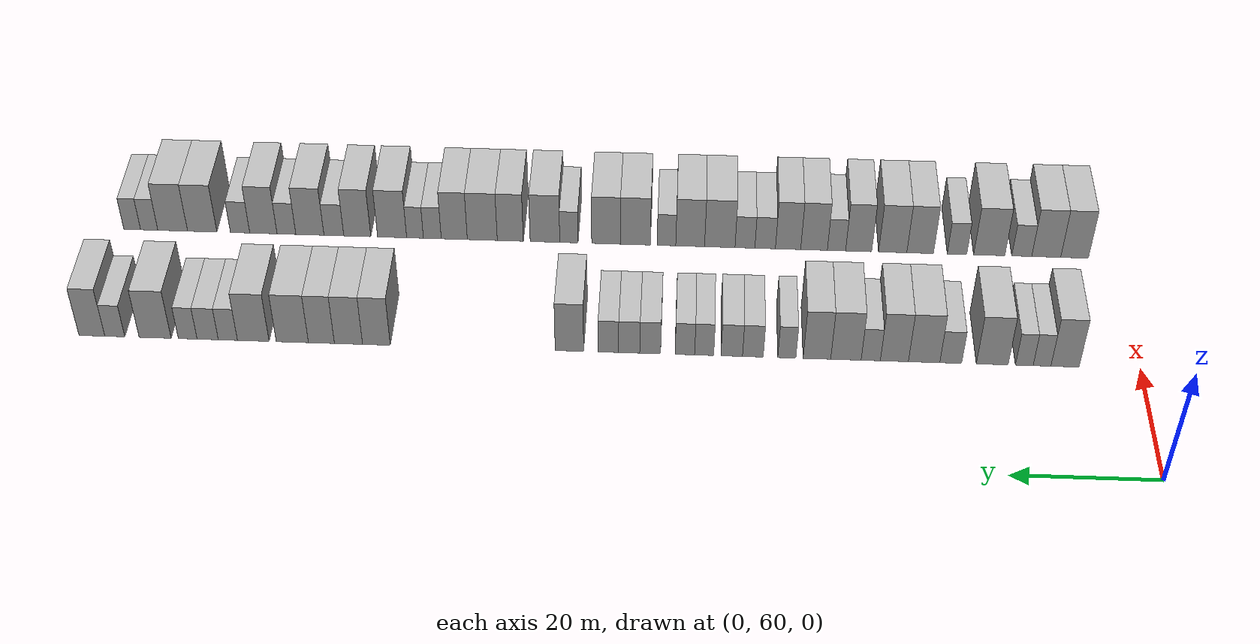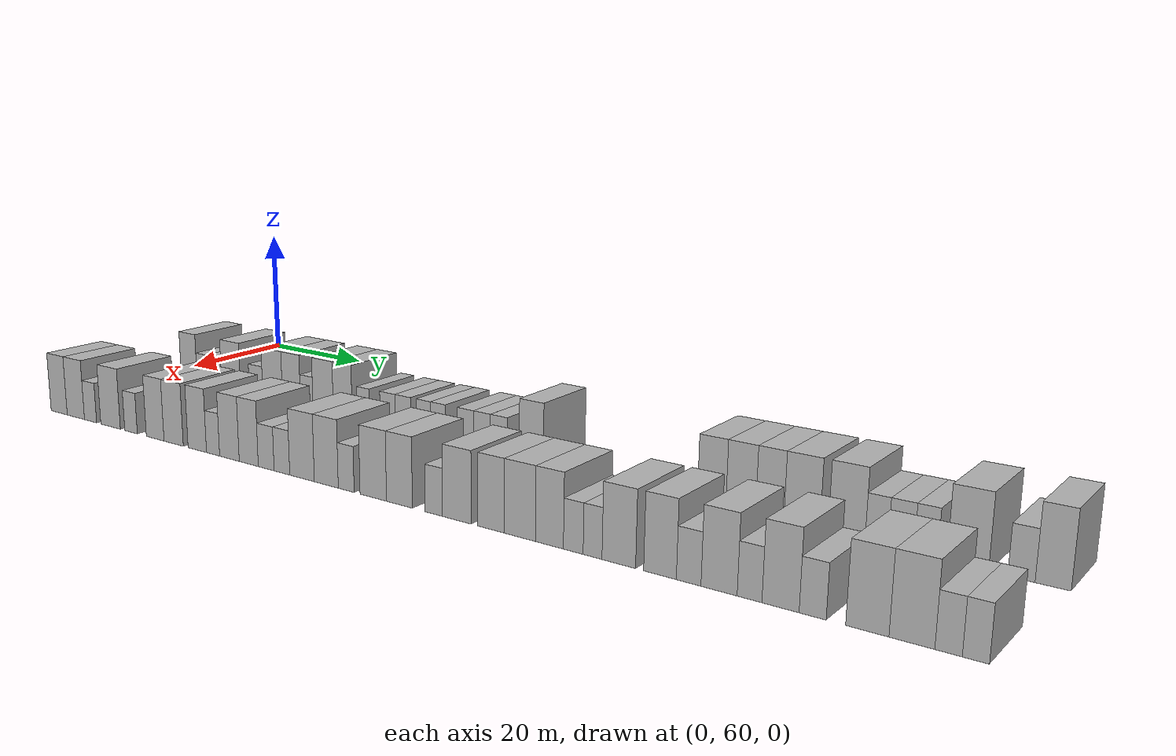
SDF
<sdf version="1.6">
 <world name="default">
  <model name="building_64">
   <static>1</static>
   <pose>25.0000 70.3157 0 0.000000 0.000000 0.000000</pose>
   <link name="link">
    <pose>0 0 4.50 0 0 0</pose>
    <collision name="collision"><geometry><box><size>10.0000 3.8328 9.0000</size></box></geometry></collision>
    <visual name="visual">
     <cast_shadows>0</cast_shadows>
     <geometry><box><size>10.0000 3.8328 9.0000</size></box></geometry>
     <material>
      <script>
       <uri>model://HANNAS_wall/materials/scripts</uri>
       <uri>model://HANNAS_wall/materials/textures</uri>
       <name>vrc/HANNAS_wall</name>
      </script>
     </material>
    </visual>
   </link>
  </model>
  <model name="building_65">
   <static>1</static>
   <pose>25.0000 73.4399 0 0.000000 0.000000 0.000000</pose>
   <link name="link">
    <pose>0 0 3.00 0 0 0</pose>
    <collision name="collision"><geometry><box><size>10.0000 2.4156 6.0000</size></box></geometry></collision>
    <visual name="visual">
     <cast_shadows>0</cast_shadows>
     <geometry><box><size>10.0000 2.4156 6.0000</size></box></geometry>
     <material>
      <script>
       <uri>model://HANNAS_wall/materials/scripts</uri>
       <uri>model://HANNAS_wall/materials/textures</uri>
       <name>vrc/HANNAS_wall</name>
      </script>
     </material>
    </visual>
   </link>
  </model>
  <model name="building_66">
   <static>1</static>
   <pose>25.0000 75.8507 0 0.000000 0.000000 0.000000</pose>
   <link name="link">
    <pose>0 0 3.00 0 0 0</pose>
    <collision name="collision"><geometry><box><size>10.0000 2.4062 6.0000</size></box></geometry></collision>
    <visual name="visual">
     <cast_shadows>0</cast_shadows>
     <geometry><box><size>10.0000 2.4062 6.0000</size></box></geometry>
     <material>
      <script>
       <uri>model://HANNAS_wall/materials/scripts</uri>
       <uri>model://HANNAS_wall/materials/textures</uri>
       <name>vrc/HANNAS_wall</name>
      </script>
     </material>
    </visual>
   </link>
  </model>
  <model name="building_67">
   <static>1</static>
   <pose>25.0000 80.2220 0 0.000000 0.000000 0.000000</pose>
   <link name="link">
    <pose>0 0 4.50 0 0 0</pose>
    <collision name="collision"><geometry><box><size>10.0000 4.3364 9.0000</size></box></geometry></collision>
    <visual name="visual">
     <cast_shadows>0</cast_shadows>
     <geometry><box><size>10.0000 4.3364 9.0000</size></box></geometry>
     <material>
      <script>
       <uri>model://HANNAS_wall/materials/scripts</uri>
       <uri>model://HANNAS_wall/materials/textures</uri>
       <name>vrc/HANNAS_wall</name>
      </script>
     </material>
    </visual>
   </link>
  </model>
  <model name="building_68">
   <static>1</static>
   <pose>25.0000 85.8815 0 0.000000 0.000000 0.000000</pose>
   <link name="link">
    <pose>0 0 3.00 0 0 0</pose>
    <collision name="collision"><geometry><box><size>10.0000 2.9826 6.0000</size></box></geometry></collision>
    <visual name="visual">
     <cast_shadows>0</cast_shadows>
     <geometry><box><size>10.0000 2.9826 6.0000</size></box></geometry>
     <material>
      <script>
       <uri>model://HANNAS_wall/materials/scripts</uri>
       <uri>model://HANNAS_wall/materials/textures</uri>
       <name>vrc/HANNAS_wall</name>
      </script>
     </material>
    </visual>
   </link>
  </model>
  <model name="building_69">
   <static>1</static>
   <pose>25.0000 89.5196 0 0.000000 0.000000 0.000000</pose>
   <link name="link">
    <pose>0 0 4.50 0 0 0</pose>
    <collision name="collision"><geometry><box><size>10.0000 4.2936 9.0000</size></box></geometry></collision>
    <visual name="visual">
     <cast_shadows>0</cast_shadows>
     <geometry><box><size>10.0000 4.2936 9.0000</size></box></geometry>
     <material>
      <script>
       <uri>model://HANNAS_wall/materials/scripts</uri>
       <uri>model://HANNAS_wall/materials/textures</uri>
       <name>vrc/HANNAS_wall</name>
      </script>
     </material>
    </visual>
   </link>
  </model>
  <model name="building_70">
   <static>1</static>
   <pose>25.0000 93.5874 0 0.000000 0.000000 0.000000</pose>
   <link name="link">
    <pose>0 0 4.50 0 0 0</pose>
    <collision name="collision"><geometry><box><size>10.0000 3.8420 9.0000</size></box></geometry></collision>
    <visual name="visual">
     <cast_shadows>0</cast_shadows>
     <geometry><box><size>10.0000 3.8420 9.0000</size></box></geometry>
     <material>
      <script>
       <uri>model://HANNAS_wall/materials/scripts</uri>
       <uri>model://HANNAS_wall/materials/textures</uri>
       <name>vrc/HANNAS_wall</name>
      </script>
     </material>
    </visual>
   </link>
  </model>
  <model name="building_71">
   <static>1</static>
   <pose>25.0000 96.8201 0 0.000000 0.000000 0.000000</pose>
   <link name="link">
    <pose>0 0 3.00 0 0 0</pose>
    <collision name="collision"><geometry><box><size>10.0000 2.6233 6.0000</size></box></geometry></collision>
    <visual name="visual">
     <cast_shadows>0</cast_shadows>
     <geometry><box><size>10.0000 2.6233 6.0000</size></box></geometry>
     <material>
      <script>
       <uri>model://HANNAS_wall/materials/scripts</uri>
       <uri>model://HANNAS_wall/materials/textures</uri>
       <name>vrc/HANNAS_wall</name>
      </script>
     </material>
    </visual>
   </link>
  </model>
  <model name="building_72">
   <static>1</static>
   <pose>25.0000 100.2155 0 0.000000 0.000000 0.000000</pose>
   <link name="link">
    <pose>0 0 4.50 0 0 0</pose>
    <collision name="collision"><geometry><box><size>10.0000 4.1676 9.0000</size></box></geometry></collision>
    <visual name="visual">
     <cast_shadows>0</cast_shadows>
     <geometry><box><size>10.0000 4.1676 9.0000</size></box></geometry>
     <material>
      <script>
       <uri>model://HANNAS_wall/materials/scripts</uri>
       <uri>model://HANNAS_wall/materials/textures</uri>
       <name>vrc/HANNAS_wall</name>
      </script>
     </material>
    </visual>
   </link>
  </model>
  <model name="building_73">
   <static>1</static>
   <pose>25.0000 104.1892 0 0.000000 0.000000 0.000000</pose>
   <link name="link">
    <pose>0 0 4.50 0 0 0</pose>
    <collision name="collision"><geometry><box><size>10.0000 3.7799 9.0000</size></box></geometry></collision>
    <visual name="visual">
     <cast_shadows>0</cast_shadows>
     <geometry><box><size>10.0000 3.7799 9.0000</size></box></geometry>
     <material>
      <script>
       <uri>model://HANNAS_wall/materials/scripts</uri>
       <uri>model://HANNAS_wall/materials/textures</uri>
       <name>vrc/HANNAS_wall</name>
      </script>
     </material>
    </visual>
   </link>
  </model>
  <model name="building_74">
   <static>1</static>
   <pose>25.0000 108.3183 0 0.000000 0.000000 0.000000</pose>
   <link name="link">
    <pose>0 0 3.00 0 0 0</pose>
    <collision name="collision"><geometry><box><size>10.0000 2.4783 6.0000</size></box></geometry></collision>
    <visual name="visual">
     <cast_shadows>0</cast_shadows>
     <geometry><box><size>10.0000 2.4783 6.0000</size></box></geometry>
     <material>
      <script>
       <uri>model://HANNAS_wall/materials/scripts</uri>
       <uri>model://HANNAS_wall/materials/textures</uri>
       <name>vrc/HANNAS_wall</name>
      </script>
     </material>
    </visual>
   </link>
  </model>
  <model name="building_75">
   <static>1</static>
   <pose>25.0000 112.9809 0 0.000000 0.000000 0.000000</pose>
   <link name="link">
    <pose>0 0 3.00 0 0 0</pose>
    <collision name="collision"><geometry><box><size>10.0000 2.8468 6.0000</size></box></geometry></collision>
    <visual name="visual">
     <cast_shadows>0</cast_shadows>
     <geometry><box><size>10.0000 2.8468 6.0000</size></box></geometry>
     <material>
      <script>
       <uri>model://HANNAS_wall/materials/scripts</uri>
       <uri>model://HANNAS_wall/materials/textures</uri>
       <name>vrc/HANNAS_wall</name>
      </script>
     </material>
    </visual>
   </link>
  </model>
  <model name="building_76">
   <static>1</static>
   <pose>25.0000 115.8867 0 0.000000 0.000000 0.000000</pose>
   <link name="link">
    <pose>0 0 3.00 0 0 0</pose>
    <collision name="collision"><geometry><box><size>10.0000 2.9647 6.0000</size></box></geometry></collision>
    <visual name="visual">
     <cast_shadows>0</cast_shadows>
     <geometry><box><size>10.0000 2.9647 6.0000</size></box></geometry>
     <material>
      <script>
       <uri>model://HANNAS_wall/materials/scripts</uri>
       <uri>model://HANNAS_wall/materials/textures</uri>
       <name>vrc/HANNAS_wall</name>
      </script>
     </material>
    </visual>
   </link>
  </model>
  <model name="building_77">
   <static>1</static>
   <pose>25.0000 119.6824 0 0.000000 0.000000 0.000000</pose>
   <link name="link">
    <pose>0 0 3.00 0 0 0</pose>
    <collision name="collision"><geometry><box><size>10.0000 2.6267 6.0000</size></box></geometry></collision>
    <visual name="visual">
     <cast_shadows>0</cast_shadows>
     <geometry><box><size>10.0000 2.6267 6.0000</size></box></geometry>
     <material>
      <script>
       <uri>model://HANNAS_wall/materials/scripts</uri>
       <uri>model://HANNAS_wall/materials/textures</uri>
       <name>vrc/HANNAS_wall</name>
      </script>
     </material>
    </visual>
   </link>
  </model>
  <model name="building_78">
   <static>1</static>
   <pose>25.0000 122.3355 0 0.000000 0.000000 0.000000</pose>
   <link name="link">
    <pose>0 0 3.00 0 0 0</pose>
    <collision name="collision"><geometry><box><size>10.0000 2.6797 6.0000</size></box></geometry></collision>
    <visual name="visual">
     <cast_shadows>0</cast_shadows>
     <geometry><box><size>10.0000 2.6797 6.0000</size></box></geometry>
     <material>
      <script>
       <uri>model://HANNAS_wall/materials/scripts</uri>
       <uri>model://HANNAS_wall/materials/textures</uri>
       <name>vrc/HANNAS_wall</name>
      </script>
     </material>
    </visual>
   </link>
  </model>
  <model name="building_79">
   <static>1</static>
   <pose>25.0000 127.1110 0 0.000000 0.000000 0.000000</pose>
   <link name="link">
    <pose>0 0 3.00 0 0 0</pose>
    <collision name="collision"><geometry><box><size>10.0000 2.8712 6.0000</size></box></geometry></collision>
    <visual name="visual">
     <cast_shadows>0</cast_shadows>
     <geometry><box><size>10.0000 2.8712 6.0000</size></box></geometry>
     <material>
      <script>
       <uri>model://HANNAS_wall/materials/scripts</uri>
       <uri>model://HANNAS_wall/materials/textures</uri>
       <name>vrc/HANNAS_wall</name>
      </script>
     </material>
    </visual>
   </link>
  </model>
  <model name="building_80">
   <static>1</static>
   <pose>25.0000 130.0078 0 0.000000 0.000000 0.000000</pose>
   <link name="link">
    <pose>0 0 3.00 0 0 0</pose>
    <collision name="collision"><geometry><box><size>10.0000 2.9224 6.0000</size></box></geometry></collision>
    <visual name="visual">
     <cast_shadows>0</cast_shadows>
     <geometry><box><size>10.0000 2.9224 6.0000</size></box></geometry>
     <material>
      <script>
       <uri>model://HANNAS_wall/materials/scripts</uri>
       <uri>model://HANNAS_wall/materials/textures</uri>
       <name>vrc/HANNAS_wall</name>
      </script>
     </material>
    </visual>
   </link>
  </model>
  <model name="building_81">
   <static>1</static>
   <pose>25.0000 132.8782 0 0.000000 0.000000 0.000000</pose>
   <link name="link">
    <pose>0 0 3.00 0 0 0</pose>
    <collision name="collision"><geometry><box><size>10.0000 2.8182 6.0000</size></box></geometry></collision>
    <visual name="visual">
     <cast_shadows>0</cast_shadows>
     <geometry><box><size>10.0000 2.8182 6.0000</size></box></geometry>
     <material>
      <script>
       <uri>model://HANNAS_wall/materials/scripts</uri>
       <uri>model://HANNAS_wall/materials/textures</uri>
       <name>vrc/HANNAS_wall</name>
      </script>
     </material>
    </visual>
   </link>
  </model>
  <model name="building_82">
   <static>1</static>
   <pose>25.0000 138.2498 0 0.000000 0.000000 0.000000</pose>
   <link name="link">
    <pose>0 0 4.50 0 0 0</pose>
    <collision name="collision"><geometry><box><size>10.0000 3.9250 9.0000</size></box></geometry></collision>
    <visual name="visual">
     <cast_shadows>0</cast_shadows>
     <geometry><box><size>10.0000 3.9250 9.0000</size></box></geometry>
     <material>
      <script>
       <uri>model://HANNAS_wall/materials/scripts</uri>
       <uri>model://HANNAS_wall/materials/textures</uri>
       <name>vrc/HANNAS_wall</name>
      </script>
     </material>
    </visual>
   </link>
  </model>
  <model name="building_83">
   <static>1</static>
   <pose>25.0000 164.9916 0 0.000000 0.000000 0.000000</pose>
   <link name="link">
    <pose>0 0 4.50 0 0 0</pose>
    <collision name="collision"><geometry><box><size>10.0000 3.8529 9.0000</size></box></geometry></collision>
    <visual name="visual">
     <cast_shadows>0</cast_shadows>
     <geometry><box><size>10.0000 3.8529 9.0000</size></box></geometry>
     <material>
      <script>
       <uri>model://HANNAS_wall/materials/scripts</uri>
       <uri>model://HANNAS_wall/materials/textures</uri>
       <name>vrc/HANNAS_wall</name>
      </script>
     </material>
    </visual>
   </link>
  </model>
  <model name="building_84">
   <static>1</static>
   <pose>25.0000 168.8767 0 0.000000 0.000000 0.000000</pose>
   <link name="link">
    <pose>0 0 4.50 0 0 0</pose>
    <collision name="collision"><geometry><box><size>10.0000 3.9171 9.0000</size></box></geometry></collision>
    <visual name="visual">
     <cast_shadows>0</cast_shadows>
     <geometry><box><size>10.0000 3.9171 9.0000</size></box></geometry>
     <material>
      <script>
       <uri>model://HANNAS_wall/materials/scripts</uri>
       <uri>model://HANNAS_wall/materials/textures</uri>
       <name>vrc/HANNAS_wall</name>
      </script>
     </material>
    </visual>
   </link>
  </model>
  <model name="building_85">
   <static>1</static>
   <pose>25.0000 172.6451 0 0.000000 0.000000 0.000000</pose>
   <link name="link">
    <pose>0 0 4.50 0 0 0</pose>
    <collision name="collision"><geometry><box><size>10.0000 3.6197 9.0000</size></box></geometry></collision>
    <visual name="visual">
     <cast_shadows>0</cast_shadows>
     <geometry><box><size>10.0000 3.6197 9.0000</size></box></geometry>
     <material>
      <script>
       <uri>model://HANNAS_wall/materials/scripts</uri>
       <uri>model://HANNAS_wall/materials/textures</uri>
       <name>vrc/HANNAS_wall</name>
      </script>
     </material>
    </visual>
   </link>
  </model>
  <model name="building_86">
   <static>1</static>
   <pose>25.0000 176.6981 0 0.000000 0.000000 0.000000</pose>
   <link name="link">
    <pose>0 0 4.50 0 0 0</pose>
    <collision name="collision"><geometry><box><size>10.0000 4.4865 9.0000</size></box></geometry></collision>
    <visual name="visual">
     <cast_shadows>0</cast_shadows>
     <geometry><box><size>10.0000 4.4865 9.0000</size></box></geometry>
     <material>
      <script>
       <uri>model://HANNAS_wall/materials/scripts</uri>
       <uri>model://HANNAS_wall/materials/textures</uri>
       <name>vrc/HANNAS_wall</name>
      </script>
     </material>
    </visual>
   </link>
  </model>
  <model name="building_87">
   <static>1</static>
   <pose>25.0000 182.1515 0 0.000000 0.000000 0.000000</pose>
   <link name="link">
    <pose>0 0 4.50 0 0 0</pose>
    <collision name="collision"><geometry><box><size>10.0000 4.4203 9.0000</size></box></geometry></collision>
    <visual name="visual">
     <cast_shadows>0</cast_shadows>
     <geometry><box><size>10.0000 4.4203 9.0000</size></box></geometry>
     <material>
      <script>
       <uri>model://HANNAS_wall/materials/scripts</uri>
       <uri>model://HANNAS_wall/materials/textures</uri>
       <name>vrc/HANNAS_wall</name>
      </script>
     </material>
    </visual>
   </link>
  </model>
  <model name="building_88">
   <static>1</static>
   <pose>25.0000 185.6992 0 0.000000 0.000000 0.000000</pose>
   <link name="link">
    <pose>0 0 3.00 0 0 0</pose>
    <collision name="collision"><geometry><box><size>10.0000 2.6751 6.0000</size></box></geometry></collision>
    <visual name="visual">
     <cast_shadows>0</cast_shadows>
     <geometry><box><size>10.0000 2.6751 6.0000</size></box></geometry>
     <material>
      <script>
       <uri>model://HANNAS_wall/materials/scripts</uri>
       <uri>model://HANNAS_wall/materials/textures</uri>
       <name>vrc/HANNAS_wall</name>
      </script>
     </material>
    </visual>
   </link>
  </model>
  <model name="building_89">
   <static>1</static>
   <pose>25.0000 188.5170 0 0.000000 0.000000 0.000000</pose>
   <link name="link">
    <pose>0 0 3.00 0 0 0</pose>
    <collision name="collision"><geometry><box><size>10.0000 2.9605 6.0000</size></box></geometry></collision>
    <visual name="visual">
     <cast_shadows>0</cast_shadows>
     <geometry><box><size>10.0000 2.9605 6.0000</size></box></geometry>
     <material>
      <script>
       <uri>model://HANNAS_wall/materials/scripts</uri>
       <uri>model://HANNAS_wall/materials/textures</uri>
       <name>vrc/HANNAS_wall</name>
      </script>
     </material>
    </visual>
   </link>
  </model>
  <model name="building_90">
   <static>1</static>
   <pose>25.0000 191.3114 0 0.000000 0.000000 0.000000</pose>
   <link name="link">
    <pose>0 0 3.00 0 0 0</pose>
    <collision name="collision"><geometry><box><size>10.0000 2.6284 6.0000</size></box></geometry></collision>
    <visual name="visual">
     <cast_shadows>0</cast_shadows>
     <geometry><box><size>10.0000 2.6284 6.0000</size></box></geometry>
     <material>
      <script>
       <uri>model://HANNAS_wall/materials/scripts</uri>
       <uri>model://HANNAS_wall/materials/textures</uri>
       <name>vrc/HANNAS_wall</name>
      </script>
     </material>
    </visual>
   </link>
  </model>
  <model name="building_91">
   <static>1</static>
   <pose>25.0000 195.8693 0 0.000000 0.000000 0.000000</pose>
   <link name="link">
    <pose>0 0 4.50 0 0 0</pose>
    <collision name="collision"><geometry><box><size>10.0000 4.4875 9.0000</size></box></geometry></collision>
    <visual name="visual">
     <cast_shadows>0</cast_shadows>
     <geometry><box><size>10.0000 4.4875 9.0000</size></box></geometry>
     <material>
      <script>
       <uri>model://HANNAS_wall/materials/scripts</uri>
       <uri>model://HANNAS_wall/materials/textures</uri>
       <name>vrc/HANNAS_wall</name>
      </script>
     </material>
    </visual>
   </link>
  </model>
  <model name="building_92">
   <static>1</static>
   <pose>25.0000 201.5171 0 0.000000 0.000000 0.000000</pose>
   <link name="link">
    <pose>0 0 3.00 0 0 0</pose>
    <collision name="collision"><geometry><box><size>10.0000 2.8082 6.0000</size></box></geometry></collision>
    <visual name="visual">
     <cast_shadows>0</cast_shadows>
     <geometry><box><size>10.0000 2.8082 6.0000</size></box></geometry>
     <material>
      <script>
       <uri>model://HANNAS_wall/materials/scripts</uri>
       <uri>model://HANNAS_wall/materials/textures</uri>
       <name>vrc/HANNAS_wall</name>
      </script>
     </material>
    </visual>
   </link>
  </model>
  <model name="building_93">
   <static>1</static>
   <pose>25.0000 204.7310 0 0.000000 0.000000 0.000000</pose>
   <link name="link">
    <pose>0 0 4.50 0 0 0</pose>
    <collision name="collision"><geometry><box><size>10.0000 3.6195 9.0000</size></box></geometry></collision>
    <visual name="visual">
     <cast_shadows>0</cast_shadows>
     <geometry><box><size>10.0000 3.6195 9.0000</size></box></geometry>
     <material>
      <script>
       <uri>model://HANNAS_wall/materials/scripts</uri>
       <uri>model://HANNAS_wall/materials/textures</uri>
       <name>vrc/HANNAS_wall</name>
      </script>
     </material>
    </visual>
   </link>
  </model>
  <model name="building_162">
   <static>1</static>
   <pose>47.0000 66.2551 0 0.000000 0.000000 0.000000</pose>
   <link name="link">
    <pose>0 0 4.50 0 0 0</pose>
    <collision name="collision"><geometry><box><size>10.0000 3.9796 9.0000</size></box></geometry></collision>
    <visual name="visual">
     <cast_shadows>0</cast_shadows>
     <geometry><box><size>10.0000 3.9796 9.0000</size></box></geometry>
     <material>
      <script>
       <uri>model://HANNAS_wall/materials/scripts</uri>
       <uri>model://HANNAS_wall/materials/textures</uri>
       <name>vrc/HANNAS_wall</name>
      </script>
     </material>
    </visual>
   </link>
  </model>
  <model name="building_163">
   <static>1</static>
   <pose>47.0000 70.3345 0 0.000000 0.000000 0.000000</pose>
   <link name="link">
    <pose>0 0 4.50 0 0 0</pose>
    <collision name="collision"><geometry><box><size>10.0000 4.1792 9.0000</size></box></geometry></collision>
    <visual name="visual">
     <cast_shadows>0</cast_shadows>
     <geometry><box><size>10.0000 4.1792 9.0000</size></box></geometry>
     <material>
      <script>
       <uri>model://HANNAS_wall/materials/scripts</uri>
       <uri>model://HANNAS_wall/materials/textures</uri>
       <name>vrc/HANNAS_wall</name>
      </script>
     </material>
    </visual>
   </link>
  </model>
  <model name="building_164">
   <static>1</static>
   <pose>47.0000 73.8592 0 0.000000 0.000000 0.000000</pose>
   <link name="link">
    <pose>0 0 3.00 0 0 0</pose>
    <collision name="collision"><geometry><box><size>10.0000 2.8702 6.0000</size></box></geometry></collision>
    <visual name="visual">
     <cast_shadows>0</cast_shadows>
     <geometry><box><size>10.0000 2.8702 6.0000</size></box></geometry>
     <material>
      <script>
       <uri>model://HANNAS_wall/materials/scripts</uri>
       <uri>model://HANNAS_wall/materials/textures</uri>
       <name>vrc/HANNAS_wall</name>
      </script>
     </material>
    </visual>
   </link>
  </model>
  <model name="building_165">
   <static>1</static>
   <pose>47.0000 78.5440 0 0.000000 0.000000 0.000000</pose>
   <link name="link">
    <pose>0 0 4.50 0 0 0</pose>
    <collision name="collision"><geometry><box><size>10.0000 4.4993 9.0000</size></box></geometry></collision>
    <visual name="visual">
     <cast_shadows>0</cast_shadows>
     <geometry><box><size>10.0000 4.4993 9.0000</size></box></geometry>
     <material>
      <script>
       <uri>model://HANNAS_wall/materials/scripts</uri>
       <uri>model://HANNAS_wall/materials/textures</uri>
       <name>vrc/HANNAS_wall</name>
      </script>
     </material>
    </visual>
   </link>
  </model>
  <model name="building_166">
   <static>1</static>
   <pose>47.0000 83.1988 0 0.000000 0.000000 0.000000</pose>
   <link name="link">
    <pose>0 0 3.00 0 0 0</pose>
    <collision name="collision"><geometry><box><size>10.0000 2.8103 6.0000</size></box></geometry></collision>
    <visual name="visual">
     <cast_shadows>0</cast_shadows>
     <geometry><box><size>10.0000 2.8103 6.0000</size></box></geometry>
     <material>
      <script>
       <uri>model://HANNAS_wall/materials/scripts</uri>
       <uri>model://HANNAS_wall/materials/textures</uri>
       <name>vrc/HANNAS_wall</name>
      </script>
     </material>
    </visual>
   </link>
  </model>
  <model name="building_167">
   <static>1</static>
   <pose>47.0000 88.5274 0 0.000000 0.000000 0.000000</pose>
   <link name="link">
    <pose>0 0 4.50 0 0 0</pose>
    <collision name="collision"><geometry><box><size>10.0000 3.8469 9.0000</size></box></geometry></collision>
    <visual name="visual">
     <cast_shadows>0</cast_shadows>
     <geometry><box><size>10.0000 3.8469 9.0000</size></box></geometry>
     <material>
      <script>
       <uri>model://HANNAS_wall/materials/scripts</uri>
       <uri>model://HANNAS_wall/materials/textures</uri>
       <name>vrc/HANNAS_wall</name>
      </script>
     </material>
    </visual>
   </link>
  </model>
  <model name="building_168">
   <static>1</static>
   <pose>47.0000 92.4946 0 0.000000 0.000000 0.000000</pose>
   <link name="link">
    <pose>0 0 4.50 0 0 0</pose>
    <collision name="collision"><geometry><box><size>10.0000 4.0874 9.0000</size></box></geometry></collision>
    <visual name="visual">
     <cast_shadows>0</cast_shadows>
     <geometry><box><size>10.0000 4.0874 9.0000</size></box></geometry>
     <material>
      <script>
       <uri>model://HANNAS_wall/materials/scripts</uri>
       <uri>model://HANNAS_wall/materials/textures</uri>
       <name>vrc/HANNAS_wall</name>
      </script>
     </material>
    </visual>
   </link>
  </model>
  <model name="building_169">
   <static>1</static>
   <pose>47.0000 97.4283 0 0.000000 0.000000 0.000000</pose>
   <link name="link">
    <pose>0 0 4.50 0 0 0</pose>
    <collision name="collision"><geometry><box><size>10.0000 3.7801 9.0000</size></box></geometry></collision>
    <visual name="visual">
     <cast_shadows>0</cast_shadows>
     <geometry><box><size>10.0000 3.7801 9.0000</size></box></geometry>
     <material>
      <script>
       <uri>model://HANNAS_wall/materials/scripts</uri>
       <uri>model://HANNAS_wall/materials/textures</uri>
       <name>vrc/HANNAS_wall</name>
      </script>
     </material>
    </visual>
   </link>
  </model>
  <model name="building_170">
   <static>1</static>
   <pose>47.0000 100.6411 0 0.000000 0.000000 0.000000</pose>
   <link name="link">
    <pose>0 0 3.00 0 0 0</pose>
    <collision name="collision"><geometry><box><size>10.0000 2.6454 6.0000</size></box></geometry></collision>
    <visual name="visual">
     <cast_shadows>0</cast_shadows>
     <geometry><box><size>10.0000 2.6454 6.0000</size></box></geometry>
     <material>
      <script>
       <uri>model://HANNAS_wall/materials/scripts</uri>
       <uri>model://HANNAS_wall/materials/textures</uri>
       <name>vrc/HANNAS_wall</name>
      </script>
     </material>
    </visual>
   </link>
  </model>
  <model name="building_171">
   <static>1</static>
   <pose>47.0000 103.8976 0 0.000000 0.000000 0.000000</pose>
   <link name="link">
    <pose>0 0 4.50 0 0 0</pose>
    <collision name="collision"><geometry><box><size>10.0000 3.8675 9.0000</size></box></geometry></collision>
    <visual name="visual">
     <cast_shadows>0</cast_shadows>
     <geometry><box><size>10.0000 3.8675 9.0000</size></box></geometry>
     <material>
      <script>
       <uri>model://HANNAS_wall/materials/scripts</uri>
       <uri>model://HANNAS_wall/materials/textures</uri>
       <name>vrc/HANNAS_wall</name>
      </script>
     </material>
    </visual>
   </link>
  </model>
  <model name="building_172">
   <static>1</static>
   <pose>47.0000 107.6657 0 0.000000 0.000000 0.000000</pose>
   <link name="link">
    <pose>0 0 4.50 0 0 0</pose>
    <collision name="collision"><geometry><box><size>10.0000 3.6688 9.0000</size></box></geometry></collision>
    <visual name="visual">
     <cast_shadows>0</cast_shadows>
     <geometry><box><size>10.0000 3.6688 9.0000</size></box></geometry>
     <material>
      <script>
       <uri>model://HANNAS_wall/materials/scripts</uri>
       <uri>model://HANNAS_wall/materials/textures</uri>
       <name>vrc/HANNAS_wall</name>
      </script>
     </material>
    </visual>
   </link>
  </model>
  <model name="building_173">
   <static>1</static>
   <pose>47.0000 110.9926 0 0.000000 0.000000 0.000000</pose>
   <link name="link">
    <pose>0 0 3.00 0 0 0</pose>
    <collision name="collision"><geometry><box><size>10.0000 2.9849 6.0000</size></box></geometry></collision>
    <visual name="visual">
     <cast_shadows>0</cast_shadows>
     <geometry><box><size>10.0000 2.9849 6.0000</size></box></geometry>
     <material>
      <script>
       <uri>model://HANNAS_wall/materials/scripts</uri>
       <uri>model://HANNAS_wall/materials/textures</uri>
       <name>vrc/HANNAS_wall</name>
      </script>
     </material>
    </visual>
   </link>
  </model>
  <model name="building_174">
   <static>1</static>
   <pose>47.0000 113.9273 0 0.000000 0.000000 0.000000</pose>
   <link name="link">
    <pose>0 0 3.00 0 0 0</pose>
    <collision name="collision"><geometry><box><size>10.0000 2.8845 6.0000</size></box></geometry></collision>
    <visual name="visual">
     <cast_shadows>0</cast_shadows>
     <geometry><box><size>10.0000 2.8845 6.0000</size></box></geometry>
     <material>
      <script>
       <uri>model://HANNAS_wall/materials/scripts</uri>
       <uri>model://HANNAS_wall/materials/textures</uri>
       <name>vrc/HANNAS_wall</name>
      </script>
     </material>
    </visual>
   </link>
  </model>
  <model name="building_175">
   <static>1</static>
   <pose>47.0000 117.5894 0 0.000000 0.000000 0.000000</pose>
   <link name="link">
    <pose>0 0 4.50 0 0 0</pose>
    <collision name="collision"><geometry><box><size>10.0000 4.4397 9.0000</size></box></geometry></collision>
    <visual name="visual">
     <cast_shadows>0</cast_shadows>
     <geometry><box><size>10.0000 4.4397 9.0000</size></box></geometry>
     <material>
      <script>
       <uri>model://HANNAS_wall/materials/scripts</uri>
       <uri>model://HANNAS_wall/materials/textures</uri>
       <name>vrc/HANNAS_wall</name>
      </script>
     </material>
    </visual>
   </link>
  </model>
  <model name="building_176">
   <static>1</static>
   <pose>47.0000 121.9052 0 0.000000 0.000000 0.000000</pose>
   <link name="link">
    <pose>0 0 4.50 0 0 0</pose>
    <collision name="collision"><geometry><box><size>10.0000 4.1919 9.0000</size></box></geometry></collision>
    <visual name="visual">
     <cast_shadows>0</cast_shadows>
     <geometry><box><size>10.0000 4.1919 9.0000</size></box></geometry>
     <material>
      <script>
       <uri>model://HANNAS_wall/materials/scripts</uri>
       <uri>model://HANNAS_wall/materials/textures</uri>
       <name>vrc/HANNAS_wall</name>
      </script>
     </material>
    </visual>
   </link>
  </model>
  <model name="building_177">
   <static>1</static>
   <pose>47.0000 125.3561 0 0.000000 0.000000 0.000000</pose>
   <link name="link">
    <pose>0 0 3.00 0 0 0</pose>
    <collision name="collision"><geometry><box><size>10.0000 2.7099 6.0000</size></box></geometry></collision>
    <visual name="visual">
     <cast_shadows>0</cast_shadows>
     <geometry><box><size>10.0000 2.7099 6.0000</size></box></geometry>
     <material>
      <script>
       <uri>model://HANNAS_wall/materials/scripts</uri>
       <uri>model://HANNAS_wall/materials/textures</uri>
       <name>vrc/HANNAS_wall</name>
      </script>
     </material>
    </visual>
   </link>
  </model>
  <model name="building_178">
   <static>1</static>
   <pose>47.0000 129.9020 0 0.000000 0.000000 0.000000</pose>
   <link name="link">
    <pose>0 0 4.50 0 0 0</pose>
    <collision name="collision"><geometry><box><size>10.0000 4.3820 9.0000</size></box></geometry></collision>
    <visual name="visual">
     <cast_shadows>0</cast_shadows>
     <geometry><box><size>10.0000 4.3820 9.0000</size></box></geometry>
     <material>
      <script>
       <uri>model://HANNAS_wall/materials/scripts</uri>
       <uri>model://HANNAS_wall/materials/textures</uri>
       <name>vrc/HANNAS_wall</name>
      </script>
     </material>
    </visual>
   </link>
  </model>
  <model name="building_179">
   <static>1</static>
   <pose>47.0000 134.1752 0 0.000000 0.000000 0.000000</pose>
   <link name="link">
    <pose>0 0 4.50 0 0 0</pose>
    <collision name="collision"><geometry><box><size>10.0000 4.1643 9.0000</size></box></geometry></collision>
    <visual name="visual">
     <cast_shadows>0</cast_shadows>
     <geometry><box><size>10.0000 4.1643 9.0000</size></box></geometry>
     <material>
      <script>
       <uri>model://HANNAS_wall/materials/scripts</uri>
       <uri>model://HANNAS_wall/materials/textures</uri>
       <name>vrc/HANNAS_wall</name>
      </script>
     </material>
    </visual>
   </link>
  </model>
  <model name="building_180">
   <static>1</static>
   <pose>47.0000 139.5926 0 0.000000 0.000000 0.000000</pose>
   <link name="link">
    <pose>0 0 3.00 0 0 0</pose>
    <collision name="collision"><geometry><box><size>10.0000 2.6705 6.0000</size></box></geometry></collision>
    <visual name="visual">
     <cast_shadows>0</cast_shadows>
     <geometry><box><size>10.0000 2.6705 6.0000</size></box></geometry>
     <material>
      <script>
       <uri>model://HANNAS_wall/materials/scripts</uri>
       <uri>model://HANNAS_wall/materials/textures</uri>
       <name>vrc/HANNAS_wall</name>
      </script>
     </material>
    </visual>
   </link>
  </model>
  <model name="building_181">
   <static>1</static>
   <pose>47.0000 143.0906 0 0.000000 0.000000 0.000000</pose>
   <link name="link">
    <pose>0 0 4.50 0 0 0</pose>
    <collision name="collision"><geometry><box><size>10.0000 4.3256 9.0000</size></box></geometry></collision>
    <visual name="visual">
     <cast_shadows>0</cast_shadows>
     <geometry><box><size>10.0000 4.3256 9.0000</size></box></geometry>
     <material>
      <script>
       <uri>model://HANNAS_wall/materials/scripts</uri>
       <uri>model://HANNAS_wall/materials/textures</uri>
       <name>vrc/HANNAS_wall</name>
      </script>
     </material>
    </visual>
   </link>
  </model>
  <model name="building_182">
   <static>1</static>
   <pose>47.0000 148.1631 0 0.000000 0.000000 0.000000</pose>
   <link name="link">
    <pose>0 0 4.50 0 0 0</pose>
    <collision name="collision"><geometry><box><size>10.0000 3.8195 9.0000</size></box></geometry></collision>
    <visual name="visual">
     <cast_shadows>0</cast_shadows>
     <geometry><box><size>10.0000 3.8195 9.0000</size></box></geometry>
     <material>
      <script>
       <uri>model://HANNAS_wall/materials/scripts</uri>
       <uri>model://HANNAS_wall/materials/textures</uri>
       <name>vrc/HANNAS_wall</name>
      </script>
     </material>
    </visual>
   </link>
  </model>
  <model name="building_183">
   <static>1</static>
   <pose>47.0000 152.2701 0 0.000000 0.000000 0.000000</pose>
   <link name="link">
    <pose>0 0 4.50 0 0 0</pose>
    <collision name="collision"><geometry><box><size>10.0000 4.3944 9.0000</size></box></geometry></collision>
    <visual name="visual">
     <cast_shadows>0</cast_shadows>
     <geometry><box><size>10.0000 4.3944 9.0000</size></box></geometry>
     <material>
      <script>
       <uri>model://HANNAS_wall/materials/scripts</uri>
       <uri>model://HANNAS_wall/materials/textures</uri>
       <name>vrc/HANNAS_wall</name>
      </script>
     </material>
    </visual>
   </link>
  </model>
  <model name="building_184">
   <static>1</static>
   <pose>47.0000 156.3790 0 0.000000 0.000000 0.000000</pose>
   <link name="link">
    <pose>0 0 4.50 0 0 0</pose>
    <collision name="collision"><geometry><box><size>10.0000 3.8234 9.0000</size></box></geometry></collision>
    <visual name="visual">
     <cast_shadows>0</cast_shadows>
     <geometry><box><size>10.0000 3.8234 9.0000</size></box></geometry>
     <material>
      <script>
       <uri>model://HANNAS_wall/materials/scripts</uri>
       <uri>model://HANNAS_wall/materials/textures</uri>
       <name>vrc/HANNAS_wall</name>
      </script>
     </material>
    </visual>
   </link>
  </model>
  <model name="building_185">
   <static>1</static>
   <pose>47.0000 159.6015 0 0.000000 0.000000 0.000000</pose>
   <link name="link">
    <pose>0 0 3.00 0 0 0</pose>
    <collision name="collision"><geometry><box><size>10.0000 2.6217 6.0000</size></box></geometry></collision>
    <visual name="visual">
     <cast_shadows>0</cast_shadows>
     <geometry><box><size>10.0000 2.6217 6.0000</size></box></geometry>
     <material>
      <script>
       <uri>model://HANNAS_wall/materials/scripts</uri>
       <uri>model://HANNAS_wall/materials/textures</uri>
       <name>vrc/HANNAS_wall</name>
      </script>
     </material>
    </visual>
   </link>
  </model>
  <model name="building_186">
   <static>1</static>
   <pose>47.0000 162.1416 0 0.000000 0.000000 0.000000</pose>
   <link name="link">
    <pose>0 0 3.00 0 0 0</pose>
    <collision name="collision"><geometry><box><size>10.0000 2.4584 6.0000</size></box></geometry></collision>
    <visual name="visual">
     <cast_shadows>0</cast_shadows>
     <geometry><box><size>10.0000 2.4584 6.0000</size></box></geometry>
     <material>
      <script>
       <uri>model://HANNAS_wall/materials/scripts</uri>
       <uri>model://HANNAS_wall/materials/textures</uri>
       <name>vrc/HANNAS_wall</name>
      </script>
     </material>
    </visual>
   </link>
  </model>
  <model name="building_187">
   <static>1</static>
   <pose>47.0000 165.5050 0 0.000000 0.000000 0.000000</pose>
   <link name="link">
    <pose>0 0 4.50 0 0 0</pose>
    <collision name="collision"><geometry><box><size>10.0000 4.2683 9.0000</size></box></geometry></collision>
    <visual name="visual">
     <cast_shadows>0</cast_shadows>
     <geometry><box><size>10.0000 4.2683 9.0000</size></box></geometry>
     <material>
      <script>
       <uri>model://HANNAS_wall/materials/scripts</uri>
       <uri>model://HANNAS_wall/materials/textures</uri>
       <name>vrc/HANNAS_wall</name>
      </script>
     </material>
    </visual>
   </link>
  </model>
  <model name="building_188">
   <static>1</static>
   <pose>47.0000 170.6313 0 0.000000 0.000000 0.000000</pose>
   <link name="link">
    <pose>0 0 4.50 0 0 0</pose>
    <collision name="collision"><geometry><box><size>10.0000 3.9843 9.0000</size></box></geometry></collision>
    <visual name="visual">
     <cast_shadows>0</cast_shadows>
     <geometry><box><size>10.0000 3.9843 9.0000</size></box></geometry>
     <material>
      <script>
       <uri>model://HANNAS_wall/materials/scripts</uri>
       <uri>model://HANNAS_wall/materials/textures</uri>
       <name>vrc/HANNAS_wall</name>
      </script>
     </material>
    </visual>
   </link>
  </model>
  <model name="building_189">
   <static>1</static>
   <pose>47.0000 174.0803 0 0.000000 0.000000 0.000000</pose>
   <link name="link">
    <pose>0 0 3.00 0 0 0</pose>
    <collision name="collision"><geometry><box><size>10.0000 2.9135 6.0000</size></box></geometry></collision>
    <visual name="visual">
     <cast_shadows>0</cast_shadows>
     <geometry><box><size>10.0000 2.9135 6.0000</size></box></geometry>
     <material>
      <script>
       <uri>model://HANNAS_wall/materials/scripts</uri>
       <uri>model://HANNAS_wall/materials/textures</uri>
       <name>vrc/HANNAS_wall</name>
      </script>
     </material>
    </visual>
   </link>
  </model>
  <model name="building_190">
   <static>1</static>
   <pose>47.0000 177.6148 0 0.000000 0.000000 0.000000</pose>
   <link name="link">
    <pose>0 0 4.50 0 0 0</pose>
    <collision name="collision"><geometry><box><size>10.0000 4.1556 9.0000</size></box></geometry></collision>
    <visual name="visual">
     <cast_shadows>0</cast_shadows>
     <geometry><box><size>10.0000 4.1556 9.0000</size></box></geometry>
     <material>
      <script>
       <uri>model://HANNAS_wall/materials/scripts</uri>
       <uri>model://HANNAS_wall/materials/textures</uri>
       <name>vrc/HANNAS_wall</name>
      </script>
     </material>
    </visual>
   </link>
  </model>
  <model name="building_191">
   <static>1</static>
   <pose>47.0000 181.0767 0 0.000000 0.000000 0.000000</pose>
   <link name="link">
    <pose>0 0 3.00 0 0 0</pose>
    <collision name="collision"><geometry><box><size>10.0000 2.7682 6.0000</size></box></geometry></collision>
    <visual name="visual">
     <cast_shadows>0</cast_shadows>
     <geometry><box><size>10.0000 2.7682 6.0000</size></box></geometry>
     <material>
      <script>
       <uri>model://HANNAS_wall/materials/scripts</uri>
       <uri>model://HANNAS_wall/materials/textures</uri>
       <name>vrc/HANNAS_wall</name>
      </script>
     </material>
    </visual>
   </link>
  </model>
  <model name="building_192">
   <static>1</static>
   <pose>47.0000 184.4763 0 0.000000 0.000000 0.000000</pose>
   <link name="link">
    <pose>0 0 4.50 0 0 0</pose>
    <collision name="collision"><geometry><box><size>10.0000 4.0310 9.0000</size></box></geometry></collision>
    <visual name="visual">
     <cast_shadows>0</cast_shadows>
     <geometry><box><size>10.0000 4.0310 9.0000</size></box></geometry>
     <material>
      <script>
       <uri>model://HANNAS_wall/materials/scripts</uri>
       <uri>model://HANNAS_wall/materials/textures</uri>
       <name>vrc/HANNAS_wall</name>
      </script>
     </material>
    </visual>
   </link>
  </model>
  <model name="building_193">
   <static>1</static>
   <pose>47.0000 187.9184 0 0.000000 0.000000 0.000000</pose>
   <link name="link">
    <pose>0 0 3.00 0 0 0</pose>
    <collision name="collision"><geometry><box><size>10.0000 2.8533 6.0000</size></box></geometry></collision>
    <visual name="visual">
     <cast_shadows>0</cast_shadows>
     <geometry><box><size>10.0000 2.8533 6.0000</size></box></geometry>
     <material>
      <script>
       <uri>model://HANNAS_wall/materials/scripts</uri>
       <uri>model://HANNAS_wall/materials/textures</uri>
       <name>vrc/HANNAS_wall</name>
      </script>
     </material>
    </visual>
   </link>
  </model>
  <model name="building_194">
   <static>1</static>
   <pose>47.0000 193.5142 0 0.000000 0.000000 0.000000</pose>
   <link name="link">
    <pose>0 0 4.50 0 0 0</pose>
    <collision name="collision"><geometry><box><size>10.0000 4.3382 9.0000</size></box></geometry></collision>
    <visual name="visual">
     <cast_shadows>0</cast_shadows>
     <geometry><box><size>10.0000 4.3382 9.0000</size></box></geometry>
     <material>
      <script>
       <uri>model://HANNAS_wall/materials/scripts</uri>
       <uri>model://HANNAS_wall/materials/textures</uri>
       <name>vrc/HANNAS_wall</name>
      </script>
     </material>
    </visual>
   </link>
  </model>
  <model name="building_195">
   <static>1</static>
   <pose>47.0000 197.8877 0 0.000000 0.000000 0.000000</pose>
   <link name="link">
    <pose>0 0 4.50 0 0 0</pose>
    <collision name="collision"><geometry><box><size>10.0000 4.4089 9.0000</size></box></geometry></collision>
    <visual name="visual">
     <cast_shadows>0</cast_shadows>
     <geometry><box><size>10.0000 4.4089 9.0000</size></box></geometry>
     <material>
      <script>
       <uri>model://HANNAS_wall/materials/scripts</uri>
       <uri>model://HANNAS_wall/materials/textures</uri>
       <name>vrc/HANNAS_wall</name>
      </script>
     </material>
    </visual>
   </link>
  </model>
  <model name="building_196">
   <static>1</static>
   <pose>47.0000 201.3715 0 0.000000 0.000000 0.000000</pose>
   <link name="link">
    <pose>0 0 3.00 0 0 0</pose>
    <collision name="collision"><geometry><box><size>10.0000 2.5589 6.0000</size></box></geometry></collision>
    <visual name="visual">
     <cast_shadows>0</cast_shadows>
     <geometry><box><size>10.0000 2.5589 6.0000</size></box></geometry>
     <material>
      <script>
       <uri>model://HANNAS_wall/materials/scripts</uri>
       <uri>model://HANNAS_wall/materials/textures</uri>
       <name>vrc/HANNAS_wall</name>
      </script>
     </material>
    </visual>
   </link>
  </model>
  <model name="building_197">
   <static>1</static>
   <pose>47.0000 203.8907 0 0.000000 0.000000 0.000000</pose>
   <link name="link">
    <pose>0 0 3.00 0 0 0</pose>
    <collision name="collision"><geometry><box><size>10.0000 2.4794 6.0000</size></box></geometry></collision>
    <visual name="visual">
     <cast_shadows>0</cast_shadows>
     <geometry><box><size>10.0000 2.4794 6.0000</size></box></geometry>
     <material>
      <script>
       <uri>model://HANNAS_wall/materials/scripts</uri>
       <uri>model://HANNAS_wall/materials/textures</uri>
       <name>vrc/HANNAS_wall</name>
      </script>
     </material>
    </visual>
   </link>
  </model>
 </world>
</sdf>
